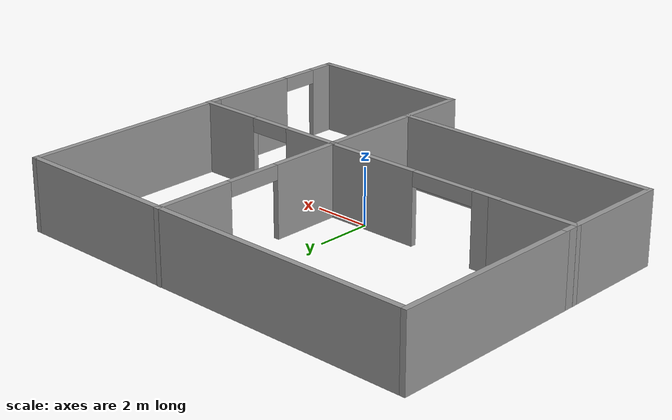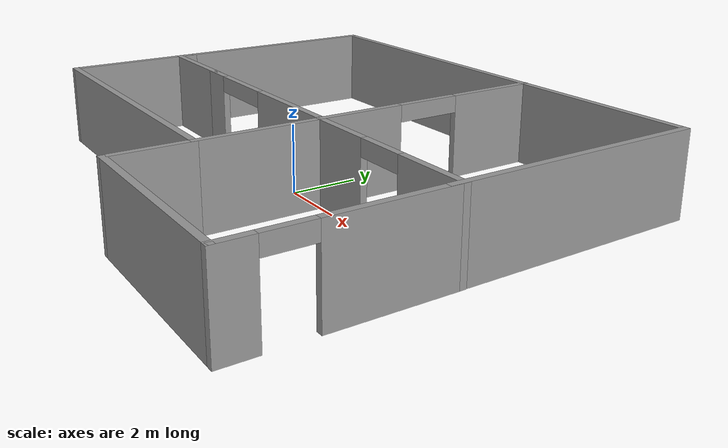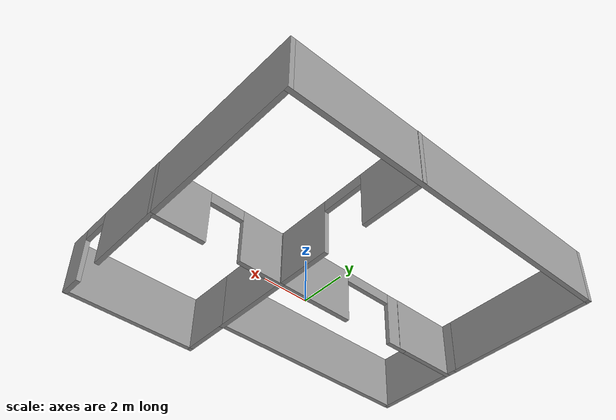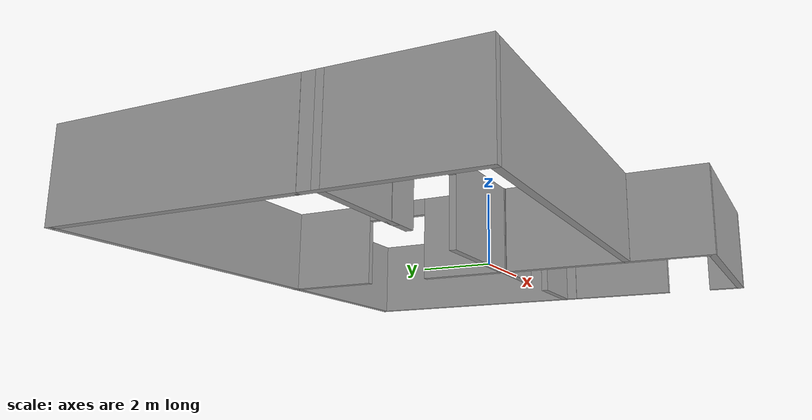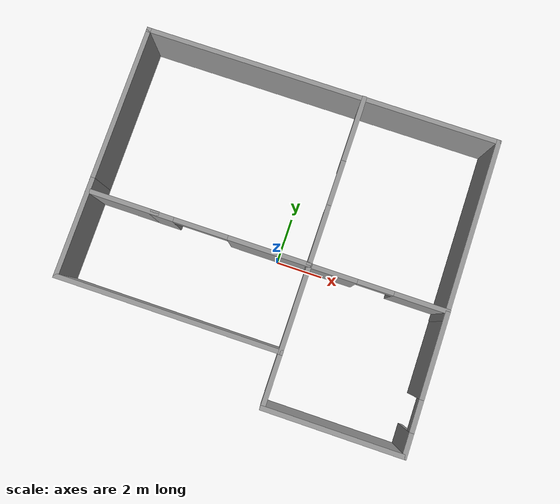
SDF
<?xml version='1.0'?>
<sdf version='1.4'>
  <model name='walls2'>
    <link name='Wall_17'>
      <collision name='Wall_17_Collision'>
        <geometry>
          <box>
            <size>2.44367 0.2 2.5</size>
          </box>
        </geometry>
        <pose>0 0 1.25 0 -0 0</pose>
      </collision>
      <visual name='Wall_17_Visual'>
        <pose>0 0 1.25 0 -0 0</pose>
        <geometry>
          <box>
            <size>2.44367 0.2 2.5</size>
          </box>
        </geometry>
        <material>
          <script>
            <uri>file://media/materials/scripts/gazebo.material</uri>
            <name>Gazebo/Grey</name>
          </script>
        </material>
      </visual>
      <velocity_decay>
        <linear>0</linear>
        <angular>0</angular>
      </velocity_decay>
      <pose>1.32818 -4.66426 0 0 0 -1.5708</pose>
    </link>
    <link name='Wall_18'>
      <collision name='Wall_18_Collision'>
        <geometry>
          <box>
            <size>5.98265 0.2 2.5</size>
          </box>
        </geometry>
        <pose>0 0 1.25 0 -0 0</pose>
      </collision>
      <visual name='Wall_18_Visual'>
        <pose>0 0 1.25 0 -0 0</pose>
        <geometry>
          <box>
            <size>5.98265 0.2 2.5</size>
          </box>
        </geometry>
        <material>
          <script>
            <uri>file://media/materials/scripts/gazebo.material</uri>
            <name>Gazebo/Grey</name>
          </script>
        </material>
      </visual>
      <velocity_decay>
        <linear>0</linear>
        <angular>0</angular>
      </velocity_decay>
      <pose>4.21951 -5.78609 0 0 -0 0</pose>
    </link>
    <link name='Wall_19'>
      <pose>7.11083 -2.84851 0 0 -0 1.5708</pose>
      <visual name='Wall_19_Visual_0'>
        <pose>-2.51476 0 1.25 0 -0 0</pose>
        <geometry>
          <box>
            <size>1.04566 0.2 2.5</size>
          </box>
        </geometry>
        <material>
          <script>
            <uri>file://media/materials/scripts/gazebo.material</uri>
            <name>Gazebo/Grey</name>
          </script>
        </material>
      </visual>
      <collision name='Wall_19_Collision_0'>
        <geometry>
          <box>
            <size>1.04566 0.2 2.5</size>
          </box>
        </geometry>
        <pose>-2.51476 0 1.25 0 -0 0</pose>
      </collision>
      <visual name='Wall_19_Visual_1'>
        <pose>1.18475 0 1.25 0 -0 0</pose>
        <geometry>
          <box>
            <size>3.70568 0.2 2.5</size>
          </box>
        </geometry>
        <material>
          <script>
            <uri>file://media/materials/scripts/gazebo.material</uri>
            <name>Gazebo/Grey</name>
          </script>
        </material>
      </visual>
      <collision name='Wall_19_Collision_1'>
        <geometry>
          <box>
            <size>3.70568 0.2 2.5</size>
          </box>
        </geometry>
        <pose>1.18475 0 1.25 0 -0 0</pose>
      </collision>
      <visual name='Wall_19_Visual_2'>
        <pose>-1.33001 0 2.25 0 -0 0</pose>
        <geometry>
          <box>
            <size>1.32383 0.2 0.5</size>
          </box>
        </geometry>
        <material>
          <script>
            <uri>file://media/materials/scripts/gazebo.material</uri>
            <name>Gazebo/Grey</name>
          </script>
        </material>
      </visual>
      <collision name='Wall_19_Collision_2'>
        <geometry>
          <box>
            <size>1.32383 0.2 0.5</size>
          </box>
        </geometry>
        <pose>-1.33001 0 2.25 0 -0 0</pose>
      </collision>
    </link>
    <link name='Wall_20'>
      <pose>4.19638 0.089081 0 0 -0 3.14159</pose>
      <visual name='Wall_20_Visual_0'>
        <pose>-1.84397 0 1.25 0 -0 0</pose>
        <geometry>
          <box>
            <size>2.34098 0.2 2.5</size>
          </box>
        </geometry>
        <material>
          <script>
            <uri>file://media/materials/scripts/gazebo.material</uri>
            <name>Gazebo/Grey</name>
          </script>
        </material>
      </visual>
      <collision name='Wall_20_Collision_0'>
        <geometry>
          <box>
            <size>2.34098 0.2 2.5</size>
          </box>
        </geometry>
        <pose>-1.84397 0 1.25 0 -0 0</pose>
      </collision>
      <visual name='Wall_20_Visual_1'>
        <pose>1.93649 0 1.25 0 -0 0</pose>
        <geometry>
          <box>
            <size>2.15593 0.2 2.5</size>
          </box>
        </geometry>
        <material>
          <script>
            <uri>file://media/materials/scripts/gazebo.material</uri>
            <name>Gazebo/Grey</name>
          </script>
        </material>
      </visual>
      <collision name='Wall_20_Collision_1'>
        <geometry>
          <box>
            <size>2.15593 0.2 2.5</size>
          </box>
        </geometry>
        <pose>1.93649 0 1.25 0 -0 0</pose>
      </collision>
      <visual name='Wall_20_Visual_2'>
        <pose>0.092522 0 2.25 0 -0 0</pose>
        <geometry>
          <box>
            <size>1.532 0.2 0.5</size>
          </box>
        </geometry>
        <material>
          <script>
            <uri>file://media/materials/scripts/gazebo.material</uri>
            <name>Gazebo/Grey</name>
          </script>
        </material>
      </visual>
      <collision name='Wall_20_Collision_2'>
        <geometry>
          <box>
            <size>1.532 0.2 0.5</size>
          </box>
        </geometry>
        <pose>0.092522 0 2.25 0 -0 0</pose>
      </collision>
    </link>
    <link name='Wall_22'>
      <collision name='Wall_22_Collision'>
        <geometry>
          <box>
            <size>6.88781 0.2 2.5</size>
          </box>
        </geometry>
        <pose>0 0 1.25 0 -0 0</pose>
      </collision>
      <visual name='Wall_22_Visual'>
        <pose>0 0 1.25 0 -0 0</pose>
        <geometry>
          <box>
            <size>6.88781 0.2 2.5</size>
          </box>
        </geometry>
        <material>
          <script>
            <uri>file://media/materials/scripts/gazebo.material</uri>
            <name>Gazebo/Grey</name>
          </script>
        </material>
      </visual>
      <velocity_decay>
        <linear>0</linear>
        <angular>0</angular>
      </velocity_decay>
      <pose>-8.14965 4.01407 0 0 -0 1.5708</pose>
    </link>
    <link name='Wall_23'>
      <collision name='Wall_23_Collision'>
        <geometry>
          <box>
            <size>15.4482 0.2 2.5</size>
          </box>
        </geometry>
        <pose>0 0 1.25 0 -0 0</pose>
      </collision>
      <visual name='Wall_23_Visual'>
        <pose>0 0 1.25 0 -0 0</pose>
        <geometry>
          <box>
            <size>15.4482 0.2 2.5</size>
          </box>
        </geometry>
        <material>
          <script>
            <uri>file://media/materials/scripts/gazebo.material</uri>
            <name>Gazebo/Grey</name>
          </script>
        </material>
      </visual>
      <velocity_decay>
        <linear>0</linear>
        <angular>0</angular>
      </velocity_decay>
      <pose>-0.525541 7.35797 0 0 -0 0</pose>
    </link>
    <link name='Wall_24'>
      <collision name='Wall_24_Collision'>
        <geometry>
          <box>
            <size>7.79735 0.2 2.5</size>
          </box>
        </geometry>
        <pose>0 0 1.25 0 -0 0</pose>
      </collision>
      <visual name='Wall_24_Visual'>
        <pose>0 0 1.25 0 -0 0</pose>
        <geometry>
          <box>
            <size>7.79735 0.2 2.5</size>
          </box>
        </geometry>
        <material>
          <script>
            <uri>file://media/materials/scripts/gazebo.material</uri>
            <name>Gazebo/Grey</name>
          </script>
        </material>
      </visual>
      <velocity_decay>
        <linear>0</linear>
        <angular>0</angular>
      </velocity_decay>
      <pose>7.09857 3.5593 0 0 0 -1.5708</pose>
    </link>
    <link name='Wall_30'>
      <pose>1.31171 3.72633 0 0 -0 1.5708</pose>
      <visual name='Wall_30_Visual_0'>
        <pose>-2.40566 0 1.25 0 -0 0</pose>
        <geometry>
          <box>
            <size>2.68202 0.2 2.5</size>
          </box>
        </geometry>
        <material>
          <script>
            <uri>file://media/materials/scripts/gazebo.material</uri>
            <name>Gazebo/Grey</name>
          </script>
        </material>
      </visual>
      <collision name='Wall_30_Collision_0'>
        <geometry>
          <box>
            <size>2.68202 0.2 2.5</size>
          </box>
        </geometry>
        <pose>-2.40566 0 1.25 0 -0 0</pose>
      </collision>
      <visual name='Wall_30_Visual_1'>
        <pose>2.31155 0 1.25 0 -0 0</pose>
        <geometry>
          <box>
            <size>2.87024 0.2 2.5</size>
          </box>
        </geometry>
        <material>
          <script>
            <uri>file://media/materials/scripts/gazebo.material</uri>
            <name>Gazebo/Grey</name>
          </script>
        </material>
      </visual>
      <collision name='Wall_30_Collision_1'>
        <geometry>
          <box>
            <size>2.87024 0.2 2.5</size>
          </box>
        </geometry>
        <pose>2.31155 0 1.25 0 -0 0</pose>
      </collision>
      <visual name='Wall_30_Visual_2'>
        <pose>-0.094108 0 2.25 0 -0 0</pose>
        <geometry>
          <box>
            <size>1.94108 0.2 0.5</size>
          </box>
        </geometry>
        <material>
          <script>
            <uri>file://media/materials/scripts/gazebo.material</uri>
            <name>Gazebo/Grey</name>
          </script>
        </material>
      </visual>
      <collision name='Wall_30_Collision_2'>
        <geometry>
          <box>
            <size>1.94108 0.2 0.5</size>
          </box>
        </geometry>
        <pose>-0.094108 0 2.25 0 -0 0</pose>
      </collision>
    </link>
    <link name='Wall_32'>
      <collision name='Wall_32_Collision'>
        <geometry>
          <box>
            <size>3.16439 0.2 2.5</size>
          </box>
        </geometry>
        <pose>0 0 1.25 0 -0 0</pose>
      </collision>
      <visual name='Wall_32_Visual'>
        <pose>0 0 1.25 0 -0 0</pose>
        <geometry>
          <box>
            <size>3.16439 0.2 2.5</size>
          </box>
        </geometry>
        <material>
          <script>
            <uri>file://media/materials/scripts/gazebo.material</uri>
            <name>Gazebo/Grey</name>
          </script>
        </material>
      </visual>
      <velocity_decay>
        <linear>0</linear>
        <angular>0</angular>
      </velocity_decay>
      <pose>-6.66391 0.12671 0 0 -0 3.14159</pose>
    </link>
    <link name='Wall_6'>
      <collision name='Wall_6_Collision'>
        <geometry>
          <box>
            <size>4.31969 0.2 2.5</size>
          </box>
        </geometry>
        <pose>0 0 1.25 0 -0 0</pose>
      </collision>
      <visual name='Wall_6_Visual'>
        <pose>0 0 1.25 0 -0 0</pose>
        <geometry>
          <box>
            <size>4.31969 0.2 2.5</size>
          </box>
        </geometry>
        <material>
          <script>
            <uri>file://media/materials/scripts/gazebo.material</uri>
            <name>Gazebo/Grey</name>
          </script>
        </material>
      </visual>
      <velocity_decay>
        <linear>0</linear>
        <angular>0</angular>
      </velocity_decay>
      <pose>-8.14513 -1.46262 0 0 0 -1.5708</pose>
    </link>
    <link name='Wall_7'>
      <collision name='Wall_7_Collision'>
        <geometry>
          <box>
            <size>9.66994 0.2 2.5</size>
          </box>
        </geometry>
        <pose>0 0 1.25 0 -0 0</pose>
      </collision>
      <visual name='Wall_7_Visual'>
        <pose>0 0 1.25 0 -0 0</pose>
        <geometry>
          <box>
            <size>9.66994 0.2 2.5</size>
          </box>
        </geometry>
        <material>
          <script>
            <uri>file://media/materials/scripts/gazebo.material</uri>
            <name>Gazebo/Grey</name>
          </script>
        </material>
      </visual>
      <velocity_decay>
        <linear>0</linear>
        <angular>0</angular>
      </velocity_decay>
      <pose>-3.41016 -3.52246 0 0 -0 0</pose>
    </link>
    //! if (false) {
    <link name='Wall_8'>
      <collision name='Wall_8_Collision'>
        <geometry>
          <box>
            <size>3.83817 0.2 2.5</size>
          </box>
        </geometry>
        <pose>0 0 1.25 0 -0 0</pose>
      </collision>
      <visual name='Wall_8_Visual'>
        <pose>0 0 1.25 0 -0 0</pose>
        <geometry>
          <box>
            <size>3.83817 0.2 2.5</size>
          </box>
        </geometry>
        <material>
          <script>
            <uri>file://media/materials/scripts/gazebo.material</uri>
            <name>Gazebo/Grey</name>
          </script>
        </material>
      </visual>
      <velocity_decay>
        <linear>0</linear>
        <angular>0</angular>
      </velocity_decay>
      <pose>1.32481 -1.70338 0 0 -0 1.5708</pose>
    </link>
    //! }
    <link name='Wall_9'>
      <pose>-2.01909 0.115705 0 0 -0 3.14159</pose>
      <visual name='Wall_9_Visual_0'>
        <pose>-1.66109 0 1.25 0 -0 0</pose>
        <geometry>
          <box>
            <size>3.56562 0.2 2.5</size>
          </box>
        </geometry>
        <material>
          <script>
            <uri>file://media/materials/scripts/gazebo.material</uri>
            <name>Gazebo/Grey</name>
          </script>
        </material>
      </visual>
      <collision name='Wall_9_Collision_0'>
        <geometry>
          <box>
            <size>3.56562 0.2 2.5</size>
          </box>
        </geometry>
        <pose>-1.66109 0 1.25 0 -0 0</pose>
      </collision>
      <visual name='Wall_9_Visual_1'>
        <pose>2.94157 0 1.25 0 -0 0</pose>
        <geometry>
          <box>
            <size>1.00468 0.2 2.5</size>
          </box>
        </geometry>
        <material>
          <script>
            <uri>file://media/materials/scripts/gazebo.material</uri>
            <name>Gazebo/Grey</name>
          </script>
        </material>
      </visual>
      <collision name='Wall_9_Collision_1'>
        <geometry>
          <box>
            <size>1.00468 0.2 2.5</size>
          </box>
        </geometry>
        <pose>2.94157 0 1.25 0 -0 0</pose>
      </collision>
      <visual name='Wall_9_Visual_2'>
        <pose>1.28047 0 2.25 0 -0 0</pose>
        <geometry>
          <box>
            <size>2.31751 0.2 0.5</size>
          </box>
        </geometry>
        <material>
          <script>
            <uri>file://media/materials/scripts/gazebo.material</uri>
            <name>Gazebo/Grey</name>
          </script>
        </material>
      </visual>
      <collision name='Wall_9_Collision_2'>
        <geometry>
          <box>
            <size>2.31751 0.2 0.5</size>
          </box>
        </geometry>
        <pose>1.28047 0 2.25 0 -0 0</pose>
      </collision>
    </link>
    <static>1</static>
  </model>
</sdf>
